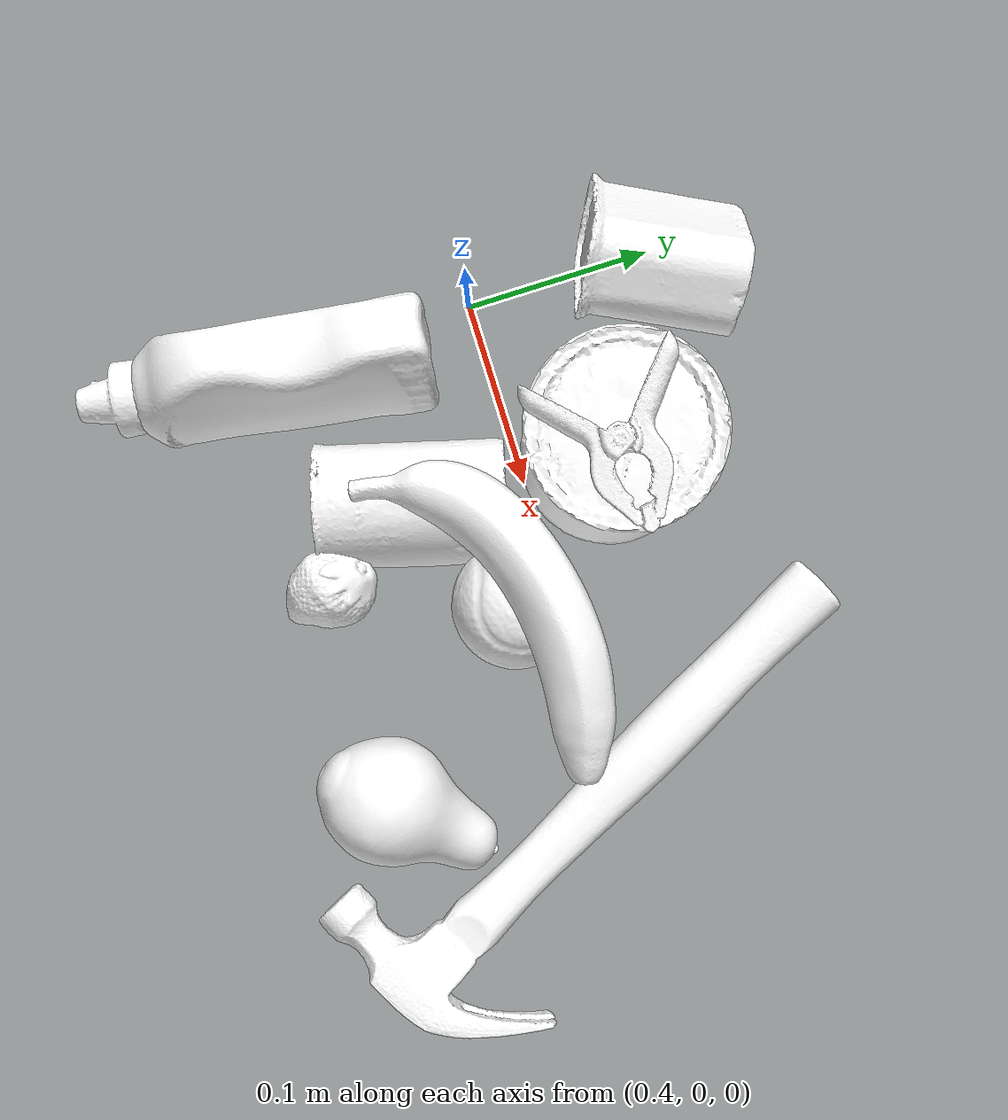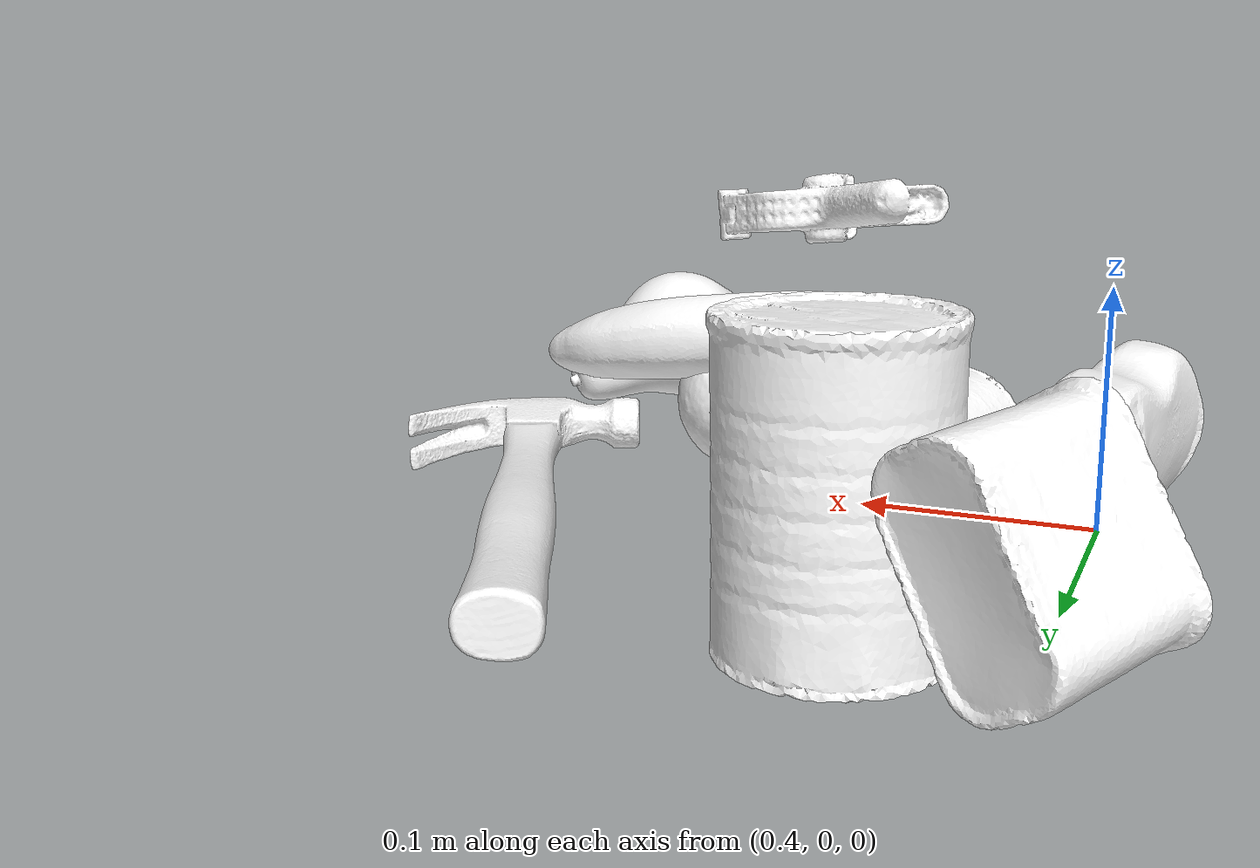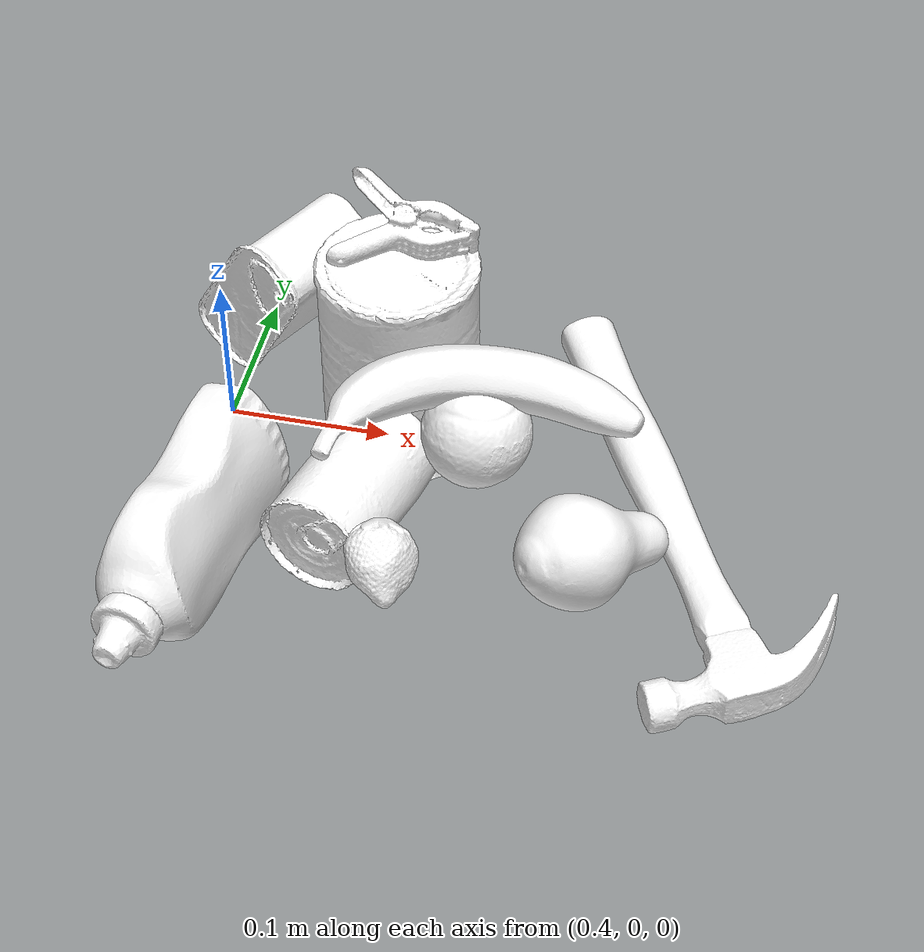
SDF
<sdf version="1.6">
  <world name="default">
  <gravity>0 0 -9.8</gravity>

    <model name="YcbMustardBottle">
      <pose frame=''>0.3987 -0.1087  0.0018 -1.5005 -1.4744  2.9295</pose>
      <link name="baselink">
        <contact>
          <lateral_friction>0.8</lateral_friction>
          <spinning_friction>0.001</spinning_friction>
          <rolling_friction>0.001</rolling_friction>
          <contact_cfm>0.0</contact_cfm>
          <contact_erp>1.0</contact_erp>
        </contact>
        <inertial>
          <pose frame=''>0.005 -0.005 -0.015 0 0 0.1</pose>
          <mass>0.603</mass>
          <inertia>
            <ixx>1e-3</ixx>
            <ixy>0</ixy>
            <ixz>0</ixz>
            <iyy>1e-3</iyy>
            <iyz>0</iyz>
            <izz>1e-3</izz>
          </inertia>
        </inertial>
        <visual name="visual">
          <geometry>
            <mesh>
              <scale>1 1 1</scale>
              <uri>../ycb_objects/YcbMustardBottle/textured_simple_reoriented.obj</uri>
            </mesh>
          </geometry>
          <material>
            <ambient>1 1 1 1</ambient>
            <diffuse>1.00000 1.00000 1.000000 1</diffuse>
            <specular>.5 .5 .5 1</specular>
            <emissive>0 0 0 0</emissive>
          </material>
        </visual>
        <collision name="collision">
          <geometry>
            <mesh>
              <scale>1 1 1</scale>
              <uri>../ycb_objects/YcbMustardBottle/collision_vhacd.obj</uri>
            </mesh>
          </geometry>
        </collision>
      </link>
    </model>

    <model name="YcbTomatoSoupCan">
          <pose frame=''>0.4906 -0.068  -0.0004 1.5708 -0.4941 -0.2606</pose>
          <link name="baselink">
        <contact>
          <lateral_friction>0.6</lateral_friction>
          <rolling_friction>0.001</rolling_friction>
          <spinning_friction>0.001</spinning_friction>
          <contact_cfm>0.0</contact_cfm>
          <contact_erp>1.0</contact_erp>
        </contact>
            <inertial>
          <pose frame=''>0 0.0 -0.02 0.0 0.0 0.0</pose>
                <mass>0.349</mass>
                <inertia>
                    <ixx>1e-3</ixx>
                    <ixy>0</ixy>
                    <ixz>0</ixz>
                    <iyy>1e-3</iyy>
                    <iyz>0</iyz>
                    <izz>1e-3</izz>
                </inertia>
            </inertial>
            <visual name="visual">
                <geometry>
                    <mesh>
                        <scale>1 1 1</scale>
                        <uri>../ycb_objects/YcbTomatoSoupCan/textured_simple_reoriented.obj</uri>
                    </mesh>
                </geometry>
                <material>
                  <ambient>1 1 1 1</ambient>
                  <diffuse>1.00000 1.00000 1.000000 1</diffuse>
                  <specular>.5 .5 .5 1</specular>
                  <emissive>0 0 0 0</emissive>
                </material>
            </visual>
            <collision name="collision">
                <geometry>
                    <mesh>
                        <scale>1 1 1</scale>
                        <uri>../ycb_objects/YcbTomatoSoupCan/collision_vhacd.obj</uri>
                    </mesh>
                </geometry>
            </collision>
          </link>
      </model>

    <model name="YcbMasterChefCan">
        <pose frame=''>0.5041 0.0384 0.0272 0.     0.     0.0129</pose>
        <link name="baselink">
        <contact>
          <lateral_friction>0.5</lateral_friction>
          <rolling_friction>0.001</rolling_friction>
          <spinning_friction>0.001</spinning_friction>
          <contact_cfm>0.0</contact_cfm>
          <contact_erp>1.0</contact_erp>
        </contact>
          <inertial>
          <pose frame=''>-0.005 0.013 0.0 0.0 0.0 0.0</pose>
              <mass>0.404</mass>
              <inertia>
                  <ixx>1e-3</ixx>
                  <ixy>0</ixy>
                  <ixz>0</ixz>
                  <iyy>1e-3</iyy>
                  <iyz>0</iyz>
                  <izz>1e-3</izz>
              </inertia>
          </inertial>
          <visual name="visual">
              <geometry>
                  <mesh>
                      <scale>1 1 1</scale>
                      <uri>../ycb_objects/YcbMasterChefCan/textured_simple_reoriented.obj</uri>
                  </mesh>
              </geometry>
              <material>
        				<ambient>1 1 1 1</ambient>
        				<diffuse>1.00000 1.00000 1.000000 1</diffuse>
        				<specular>.5 .5 .5 1</specular>
        				<emissive>0 0 0 0</emissive>
        			</material>
          </visual>
          <collision name="collision">
              <geometry>
                  <mesh>
                      <scale>1 1 1</scale>
                      <uri>../ycb_objects/YcbMasterChefCan/collision_vhacd.obj</uri>
                  </mesh>
              </geometry>
          </collision>
        </link>
    </model>

    <model name="YcbPear">
      <pose frame=''>0.6391 -0.1213 -0.0014 0.3632 0.094  2.481</pose>
      <link name="baselink">
        <contact>
          <lateral_friction>0.6</lateral_friction>
          <rolling_friction>0.001</rolling_friction>
          <spinning_friction>0.001</spinning_friction>
          <contact_cfm>0.0</contact_cfm>
          <contact_erp>1.0</contact_erp>
        </contact>
        <inertial>
          <pose frame=''>0 0.005 0.04 0.0 0.0 0.0</pose>
            <mass>0.049</mass>
            <inertia>
                <ixx>1e-3</ixx>
                <ixy>0</ixy>
                <ixz>0</ixz>
                <iyy>1e-3</iyy>
                <iyz>0</iyz>
                <izz>1e-3</izz>
            </inertia>
        </inertial>
        <visual name="visual">
            <geometry>
                <mesh>
                    <scale>1 1 1</scale>
                    <uri>../ycb_objects/YcbPear/textured_reoriented.obj</uri>
                </mesh>
            </geometry>
            <material>
      				<ambient>1 1 1 1</ambient>
      				<diffuse>1.00000 1.00000 1.000000 1</diffuse>
      				<specular>.5 .5 .5 1</specular>
      				<emissive>0 0 0 0</emissive>
      			</material>
        </visual>
        <collision name="collision">
            <geometry>
                <mesh>
                    <scale>1 1 1</scale>
                    <uri>../ycb_objects/YcbPear/collision_vhacd.obj</uri>
                </mesh>
            </geometry>
        </collision>
      </link>
  	</model>

    <model name="YcbPottedMeatCan">
      <pose frame=''>0.4163 0.0909 0.0247 -1.07   -1.4848  2.1881</pose>
      <link name="baselink">
         <contact>
          <lateral_friction>0.6</lateral_friction>
          <rolling_friction>0.0</rolling_friction>
          <contact_cfm>0.0</contact_cfm>
          <contact_erp>1.0</contact_erp>
        </contact>
        <inertial>
          <pose frame=''>0 0.012 -0.01 0 0 -0.5</pose>
          <mass>0.370</mass>
          <inertia>
            <ixx>1e-3</ixx>
            <ixy>0</ixy>
            <ixz>0</ixz>
            <iyy>1e-3</iyy>
            <iyz>0</iyz>
            <izz>1e-3</izz>
          </inertia>
        </inertial>
        <visual name="visual">
          <geometry>
            <mesh>
              <scale>1 1 1</scale>
              <uri>../ycb_objects/YcbPottedMeatCan/textured_simple_reoriented.obj</uri>
            </mesh>
          </geometry>
          <material>
            <ambient>1 1 1 1</ambient>
            <diffuse>1.00000 1.00000 1.000000 1</diffuse>
            <specular>.5 .5 .5 1</specular>
            <emissive>0 0 0 0</emissive>
          </material>
        </visual>
        <collision name="collision">
          <geometry>
            <mesh>
              <scale>1 1 1</scale>
              <uri>../ycb_objects/YcbPottedMeatCan/collision_vhacd.obj</uri>
            </mesh>
          </geometry>
        </collision>
      </link>
    </model>

    <model name="YcbHammer">
      <pose frame=''>0.6896  0.0057 -0.0058 -3.1363  0.0206 -2.7644</pose>
      <link name="baselink">
        <contact>
          <lateral_friction>0.3</lateral_friction>
          <rolling_friction>0.001</rolling_friction>
          <contact_cfm>0.0</contact_cfm>
          <contact_erp>1.0</contact_erp>
        </contact>
        <inertial>
          <pose frame=''>0.02 -0.01 0.01 0.0 0.0 0.0</pose>
            <mass>0.665</mass>
            <inertia>
                <ixx>1e-3</ixx>
                <ixy>0</ixy>
                <ixz>0</ixz>
                <iyy>1e-3</iyy>
                <iyz>0</iyz>
                <izz>1e-3</izz>
            </inertia>
        </inertial>
        <visual name="visual">
            <geometry>
                <mesh>
                    <scale>1 1 1</scale>
                    <uri>../ycb_objects/YcbHammer/textured_reoriented.obj</uri>
                </mesh>
            </geometry>
            <material>
      				<ambient>1 1 1 1</ambient>
      				<diffuse>1.00000 1.00000 1.000000 1</diffuse>
      				<specular>.5 .5 .5 1</specular>
      				<emissive>0 0 0 0</emissive>
      			</material>
        </visual>
        <collision name="collision">
            <geometry>
                <mesh>
                    <scale>1 1 1</scale>
                    <uri>../ycb_objects/YcbHammer/collision_vhacd.obj</uri>
                </mesh>
            </geometry>
        </collision>
      </link>
  	</model>

    <model name="YcbTennisBall">
      <pose frame=''>0.5658 -0.0161  0.0009 0.2946 -0.1734  0.4667</pose>
      <link name="baselink">
        <contact>
          <lateral_friction>0.8</lateral_friction>
          <rolling_friction>0.001</rolling_friction>
          <spinning_friction>0.001</spinning_friction>
          <contact_cfm>0.0</contact_cfm>
          <contact_erp>1.0</contact_erp>
        </contact>
        <inertial>
          <pose frame=''>0.0 0.005 0.03 0.0 0.0 0.0</pose>
            <mass>0.058</mass>
            <inertia>
                <ixx>1e-3</ixx>
                <ixy>0</ixy>
                <ixz>0</ixz>
                <iyy>1e-3</iyy>
                <iyz>0</iyz>
                <izz>1e-3</izz>
            </inertia>
        </inertial>
        <visual name="visual">
            <geometry>
                <mesh>
                    <scale>1 1 1</scale>
                    <uri>../ycb_objects/YcbTennisBall/textured_reoriented.obj</uri>
                </mesh>
            </geometry>
            <material>
      				<ambient>1 1 1 1</ambient>
      				<diffuse>1.00000 1.00000 1.000000 1</diffuse>
      				<specular>.5 .5 .5 1</specular>
      				<emissive>0 0 0 0</emissive>
      			</material>
        </visual>
        <collision name="collision">
            <geometry>
                <mesh>
                    <scale>1 1 1</scale>
                    <uri>../ycb_objects/YcbTennisBall/collision_vhacd.obj</uri>
                </mesh>
            </geometry>
        </collision>
      </link>
  	</model>

    <model name="YcbMediumClamp">
      <pose frame=''>0.5013 0.0443 0.0879  0.1835 -0.0022 -0.0153</pose>
      <link name="baselink">
        <contact>
          <lateral_friction>0.6</lateral_friction>
          <rolling_friction>0.001</rolling_friction>
          <spinning_friction>0.001</spinning_friction>
          <contact_cfm>0.0</contact_cfm>
          <contact_erp>1.0</contact_erp>
        </contact>
        <inertial>
          <pose frame=''>0.02 0.009 0.04 -0.1 0 0.0</pose>
            <mass>0.059</mass>
            <inertia>
                <ixx>1e-3</ixx>
                <ixy>0</ixy>
                <ixz>0</ixz>
                <iyy>1e-3</iyy>
                <iyz>0</iyz>
                <izz>1e-3</izz>
            </inertia>
        </inertial>
        <visual name="visual">
            <geometry>
                <mesh>
                    <scale>1 1 1</scale>
                    <uri>../ycb_objects/YcbMediumClamp/textured_reoriented.obj</uri>
                </mesh>
            </geometry>
            <material>
      				<ambient>1 1 1 1</ambient>
      				<diffuse>1.00000 1.00000 1.000000 1</diffuse>
      				<specular>.5 .5 .5 1</specular>
      				<emissive>0 0 0 0</emissive>
      			</material>
        </visual>
        <collision name="collision">
            <geometry>
                <mesh>
                    <scale>1 1 1</scale>
                    <uri>../ycb_objects/YcbMediumClamp/collision_vhacd.obj</uri>
                </mesh>
            </geometry>
        </collision>
      </link>
  	</model>

    <model name="YcbBanana">
      <pose frame=''>0.5371 -0.0172  0.054 0.2577 0.0607 0.2475</pose>
      <link name="baselink">
        <contact>
          <lateral_friction>0.3</lateral_friction>
          <rolling_friction>0.001</rolling_friction>
          <contact_cfm>0.0</contact_cfm>
          <contact_erp>1.0</contact_erp>
        </contact>
        <inertial>
          <pose frame=''>0.01 0.0 0.01 0.0 0.0 0.0</pose>
          <mass>0.066</mass>
          <inertia>
            <ixx>1e-3</ixx>
            <ixy>0</ixy>
            <ixz>0</ixz>
            <iyy>1e-3</iyy>
            <iyz>0</iyz>
            <izz>1e-3</izz>
          </inertia>
        </inertial>
        <visual name="visual">
          <geometry>
            <mesh>
              <scale>1 1 1</scale>
              <uri>../ycb_objects/YcbBanana/textured_simple_reoriented.obj</uri>
            </mesh>
          </geometry>
          <material>
            <ambient>1 1 1 1</ambient>
            <diffuse>1.00000 1.00000 1.000000 1</diffuse>
            <specular>.5 .5 .5 1</specular>
            <emissive>0 0 0 0</emissive>
          </material>
        </visual>
        <collision name="collision">
          <geometry>
            <mesh>
              <scale>1 1 1</scale>
              <uri>../ycb_objects/YcbBanana/collision_vhacd.obj</uri>
            </mesh>
          </geometry>
        </collision>
      </link>
    </model>

    <model name="YcbStrawberry">
      <pose frame=''>0.5327 -0.1158 -0.0031 0.2601 -0.2464 -0.1076</pose>
      <link name="baselink">
        <contact>
          <lateral_friction>0.5</lateral_friction>
          <rolling_friction>0.001</rolling_friction>
          <spinning_friction>0.001</spinning_friction>
          <contact_cfm>0.0</contact_cfm>
          <contact_erp>1.0</contact_erp>
        </contact>
        <inertial>
          <pose frame=''>-0.005 0.005 0.02 0.0 0.0 0.0</pose>
            <mass>0.018</mass>
            <inertia>
                <ixx>1e-3</ixx>
                <ixy>0</ixy>
                <ixz>0</ixz>
                <iyy>1e-3</iyy>
                <iyz>0</iyz>
                <izz>1e-3</izz>
            </inertia>
        </inertial>
        <visual name="visual">
            <geometry>
                <mesh>
                    <scale>1 1 1</scale>
                    <uri>../ycb_objects/YcbStrawberry/textured_reoriented.obj</uri>
                </mesh>
            </geometry>
            <material>
      				<ambient>1 1 1 1</ambient>
      				<diffuse>1.00000 1.00000 1.000000 1</diffuse>
      				<specular>.5 .5 .5 1</specular>
      				<emissive>0 0 0 0</emissive>
      			</material>
        </visual>
        <collision name="collision">
            <geometry>
                <mesh>
                    <scale>1 1 1</scale>
                    <uri>../ycb_objects/YcbStrawberry/collision_vhacd.obj</uri>
                </mesh>
            </geometry>
        </collision>
      </link>
  	</model>

  </world>
</sdf>
